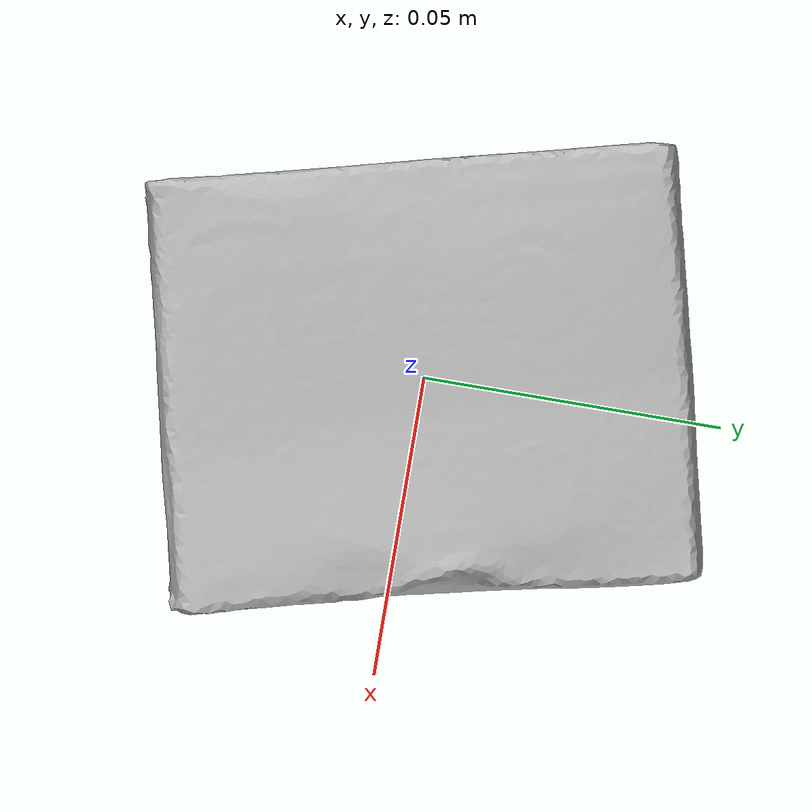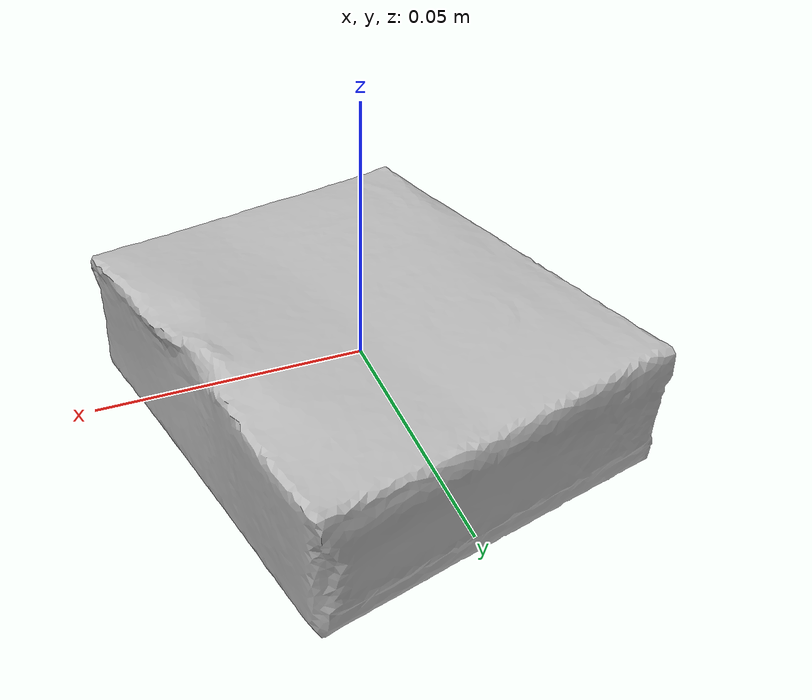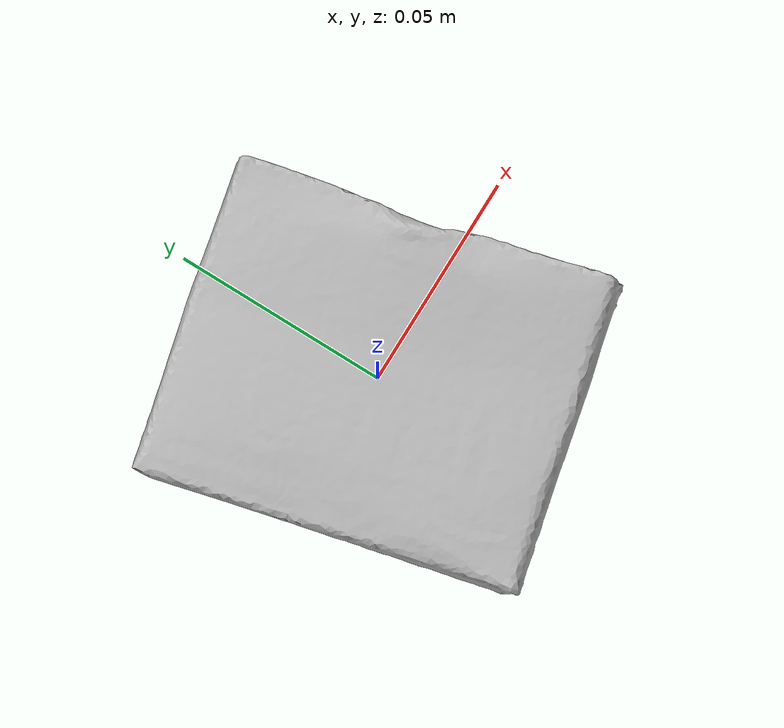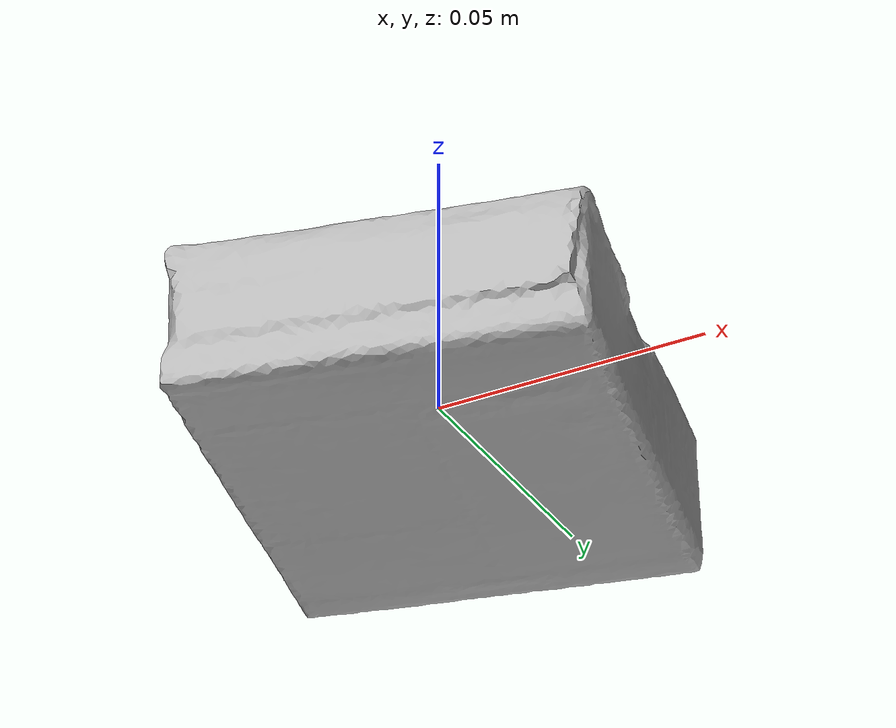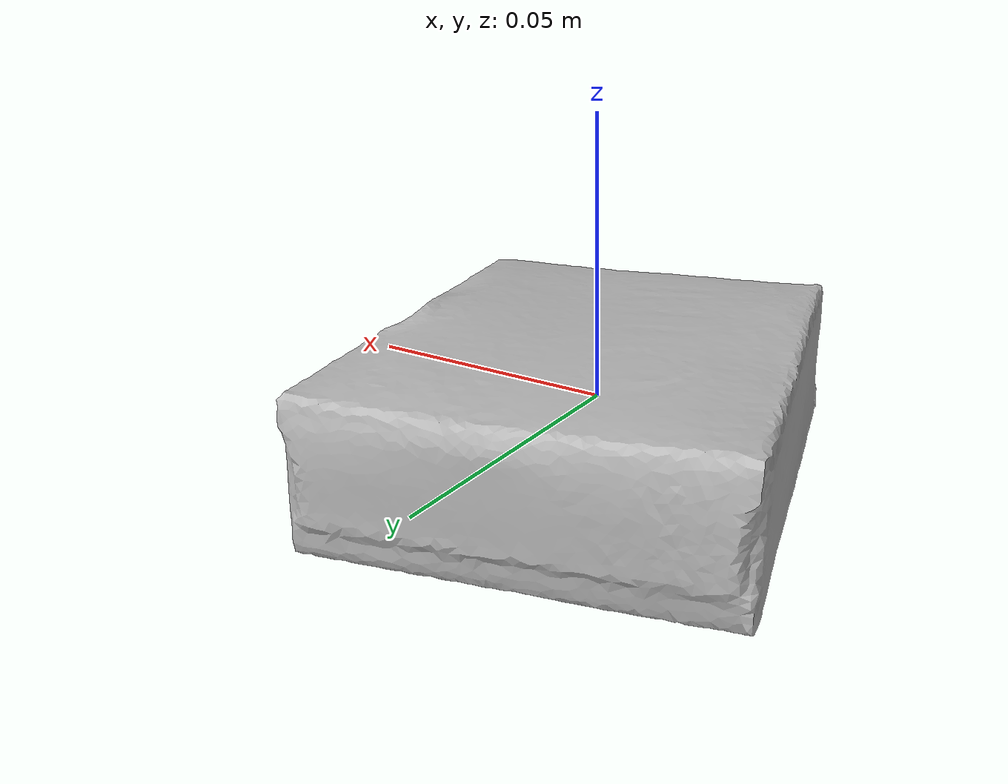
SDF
<?xml version="1.0" ?>
<sdf version="1.7">
<!--
This SDF file was automatically generated using a template modified
and authored by Jinjian Li. The moment of interia is not supposed to be changed.
-->
    <model name="obj_000008">
      <pose>0.0 0.0 0.0 0.0 0.0 0.0</pose>
      <link name="link">
        <inertial>
          <inertia>
           <ixx>0.00017540472178248292</ixx>
           <ixy>1.1409270667610206e-05</ixy>
           <ixz>3.5140122808793043e-07</ixz>
           <iyy>0.00012886163743697893</iyy>
           <iyz>-6.750781860328069e-07</iyz>
           <izz>0.0002710759715125497</izz>
          </inertia>
          <mass>0.259473887321144</mass>
        </inertial>
        <collision name="collision">
          <geometry>
            <mesh>
             <uri>obj_000008.obj</uri>
             <scale>1 1 1</scale>
            </mesh>
          </geometry>
        </collision>

        <visual name="visual">
          <geometry>
            <mesh>
             <uri>obj_000008.obj</uri>
             <scale>1 1 1</scale>
            </mesh>
          </geometry>
        </visual>
      </link>
    </model>
</sdf>
